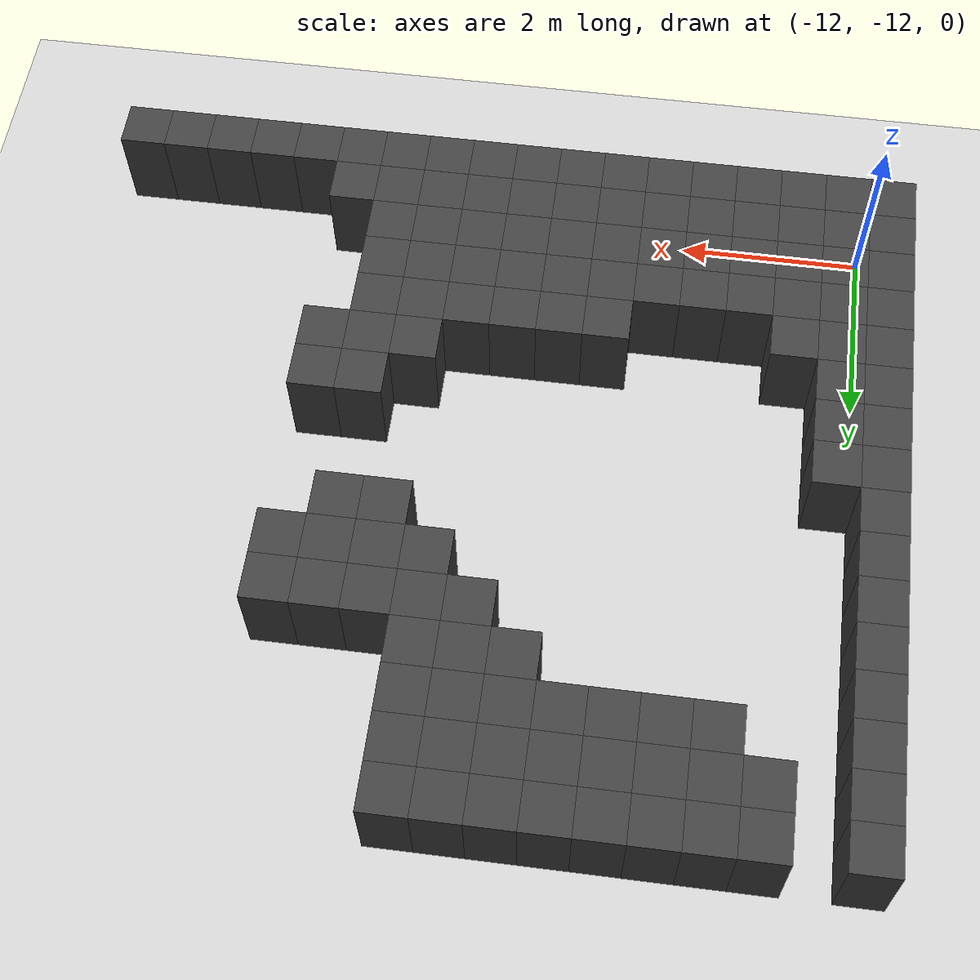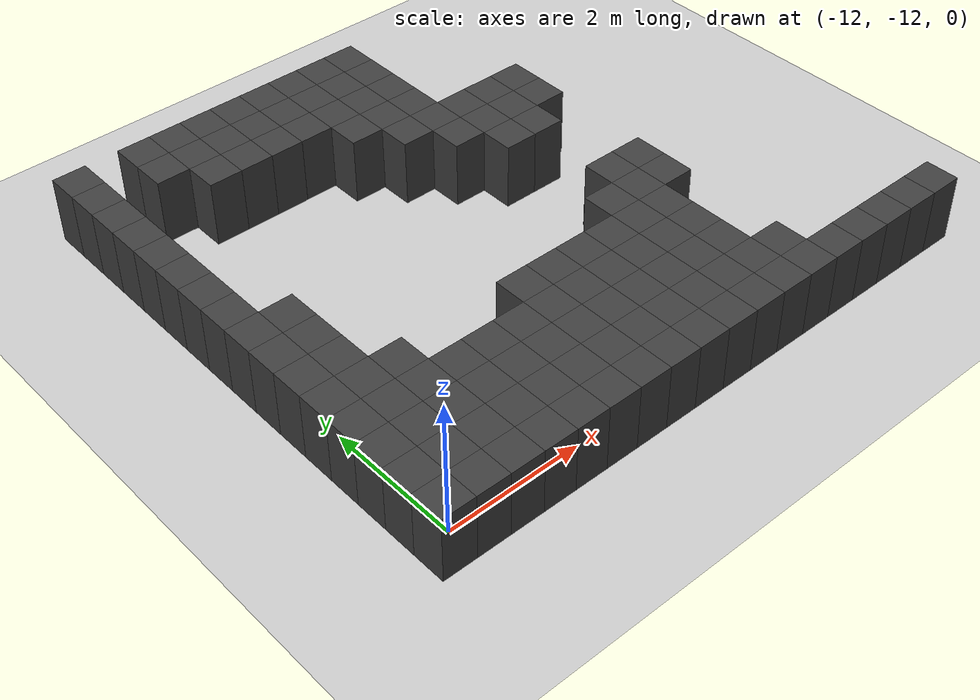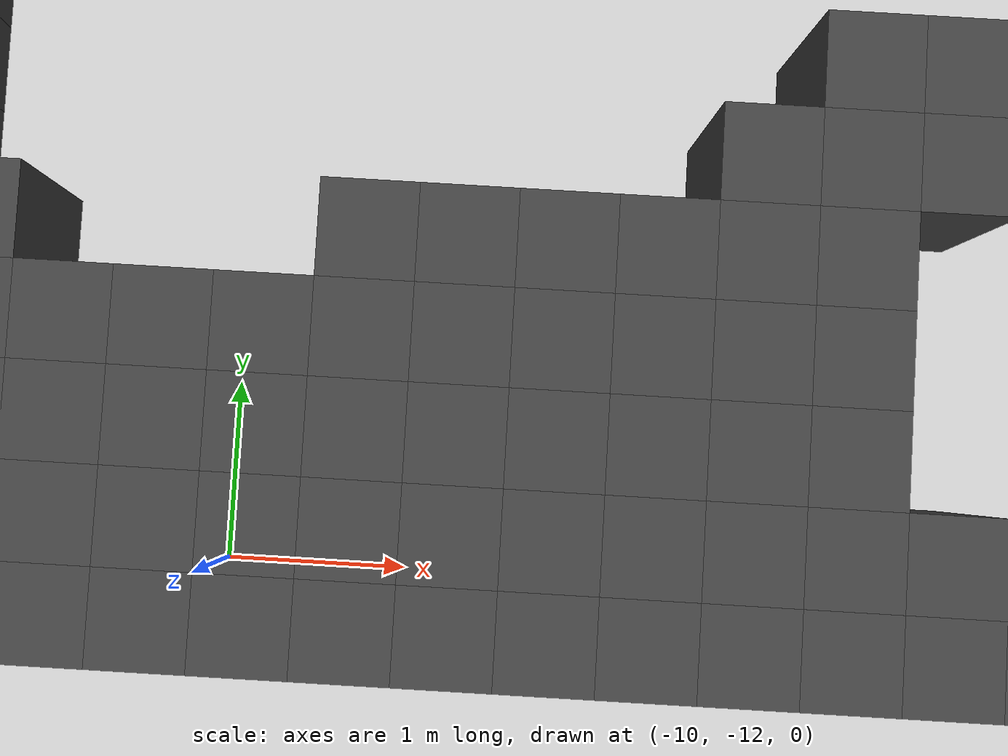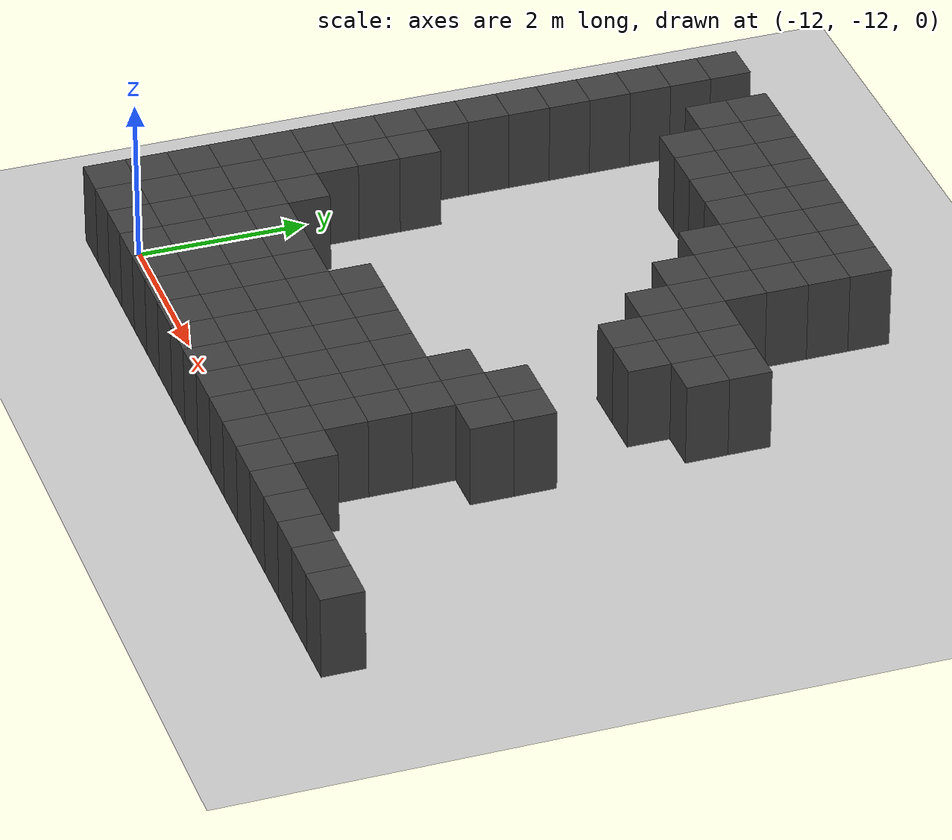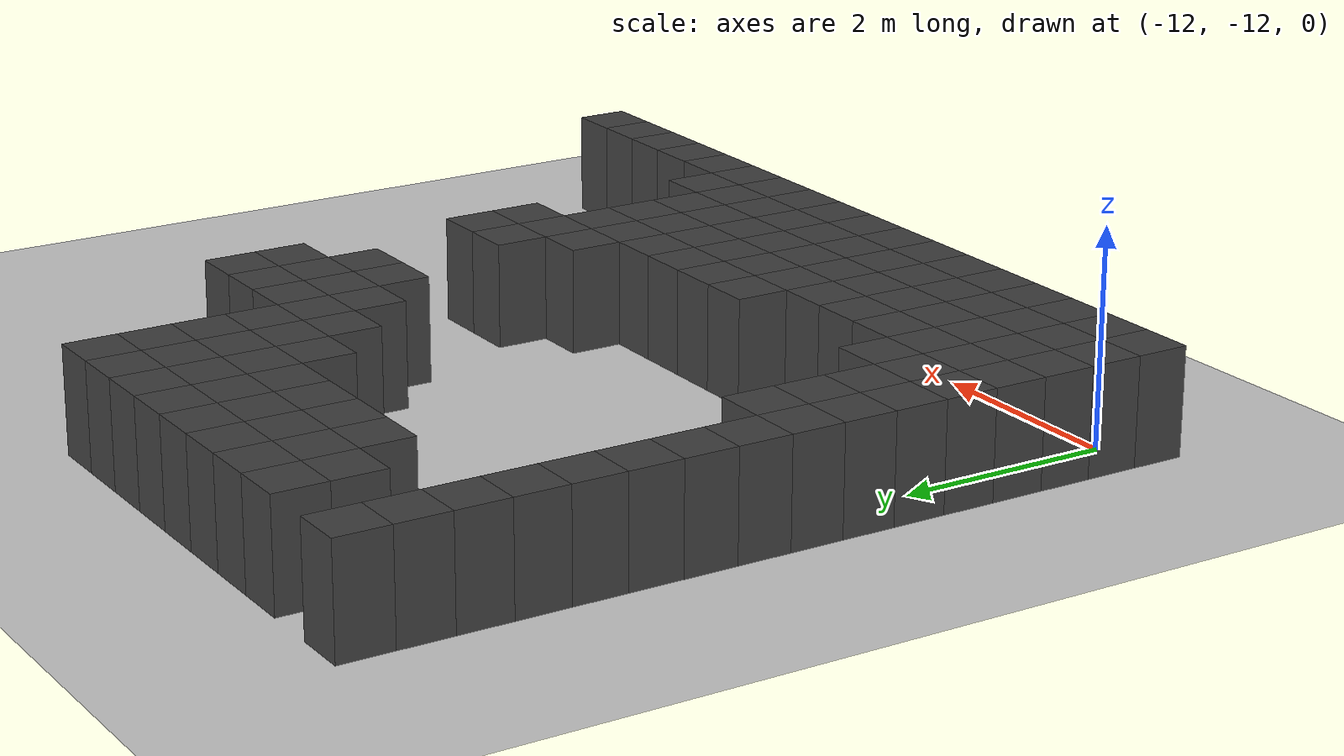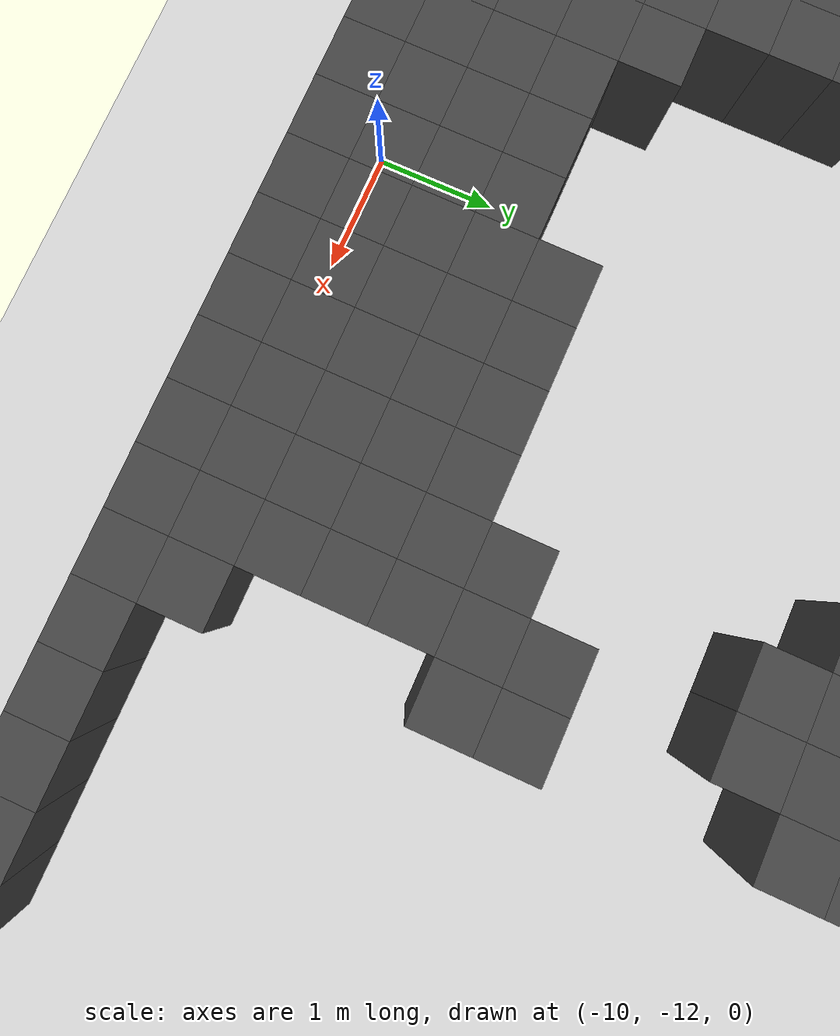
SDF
<sdf version="1.7">
 <world name="map_7372">
  <model name="ground_plane">
   <static>true</static>
   <link name="link">
    <collision name="collision">
     <geometry><plane><normal>0 0 1</normal><size>200 200</size></plane></geometry>
    </collision>
    <visual name="visual">
     <geometry><plane><normal>0 0 1</normal><size>200 200</size></plane></geometry>
     <material><ambient>0.8 0.8 0.8 1</ambient><diffuse>0.8 0.8 0.8 1</diffuse></material>
    </visual>
   </link>
  </model>
  <model name="maze_environment">
   <static>true</static>
   <link name="wall_541">
    <pose>-12.250 -4.750 0.500 0 0 0</pose>
    <collision name="col"><geometry><box><size>0.5 0.5 1.0</size></box></geometry></collision>
    <visual name="vis">
     <geometry><box><size>0.5 0.5 1.0</size></box></geometry>
     <material><ambient>0.15 0.15 0.15 1</ambient><diffuse>0.25 0.25 0.25 1</diffuse></material>
    </visual>
   </link>
   <link name="wall_542">
    <pose>-11.250 -4.750 0.500 0 0 0</pose>
    <collision name="col"><geometry><box><size>0.5 0.5 1.0</size></box></geometry></collision>
    <visual name="vis">
     <geometry><box><size>0.5 0.5 1.0</size></box></geometry>
     <material><ambient>0.15 0.15 0.15 1</ambient><diffuse>0.25 0.25 0.25 1</diffuse></material>
    </visual>
   </link>
   <link name="wall_543">
    <pose>-10.750 -4.750 0.500 0 0 0</pose>
    <collision name="col"><geometry><box><size>0.5 0.5 1.0</size></box></geometry></collision>
    <visual name="vis">
     <geometry><box><size>0.5 0.5 1.0</size></box></geometry>
     <material><ambient>0.15 0.15 0.15 1</ambient><diffuse>0.25 0.25 0.25 1</diffuse></material>
    </visual>
   </link>
   <link name="wall_544">
    <pose>-10.250 -4.750 0.500 0 0 0</pose>
    <collision name="col"><geometry><box><size>0.5 0.5 1.0</size></box></geometry></collision>
    <visual name="vis">
     <geometry><box><size>0.5 0.5 1.0</size></box></geometry>
     <material><ambient>0.15 0.15 0.15 1</ambient><diffuse>0.25 0.25 0.25 1</diffuse></material>
    </visual>
   </link>
   <link name="wall_545">
    <pose>-9.750 -4.750 0.500 0 0 0</pose>
    <collision name="col"><geometry><box><size>0.5 0.5 1.0</size></box></geometry></collision>
    <visual name="vis">
     <geometry><box><size>0.5 0.5 1.0</size></box></geometry>
     <material><ambient>0.15 0.15 0.15 1</ambient><diffuse>0.25 0.25 0.25 1</diffuse></material>
    </visual>
   </link>
   <link name="wall_546">
    <pose>-9.250 -4.750 0.500 0 0 0</pose>
    <collision name="col"><geometry><box><size>0.5 0.5 1.0</size></box></geometry></collision>
    <visual name="vis">
     <geometry><box><size>0.5 0.5 1.0</size></box></geometry>
     <material><ambient>0.15 0.15 0.15 1</ambient><diffuse>0.25 0.25 0.25 1</diffuse></material>
    </visual>
   </link>
   <link name="wall_547">
    <pose>-8.750 -4.750 0.500 0 0 0</pose>
    <collision name="col"><geometry><box><size>0.5 0.5 1.0</size></box></geometry></collision>
    <visual name="vis">
     <geometry><box><size>0.5 0.5 1.0</size></box></geometry>
     <material><ambient>0.15 0.15 0.15 1</ambient><diffuse>0.25 0.25 0.25 1</diffuse></material>
    </visual>
   </link>
   <link name="wall_548">
    <pose>-8.250 -4.750 0.500 0 0 0</pose>
    <collision name="col"><geometry><box><size>0.5 0.5 1.0</size></box></geometry></collision>
    <visual name="vis">
     <geometry><box><size>0.5 0.5 1.0</size></box></geometry>
     <material><ambient>0.15 0.15 0.15 1</ambient><diffuse>0.25 0.25 0.25 1</diffuse></material>
    </visual>
   </link>
   <link name="wall_549">
    <pose>-7.750 -4.750 0.500 0 0 0</pose>
    <collision name="col"><geometry><box><size>0.5 0.5 1.0</size></box></geometry></collision>
    <visual name="vis">
     <geometry><box><size>0.5 0.5 1.0</size></box></geometry>
     <material><ambient>0.15 0.15 0.15 1</ambient><diffuse>0.25 0.25 0.25 1</diffuse></material>
    </visual>
   </link>
   <link name="wall_558">
    <pose>-12.250 -5.250 0.500 0 0 0</pose>
    <collision name="col"><geometry><box><size>0.5 0.5 1.0</size></box></geometry></collision>
    <visual name="vis">
     <geometry><box><size>0.5 0.5 1.0</size></box></geometry>
     <material><ambient>0.15 0.15 0.15 1</ambient><diffuse>0.25 0.25 0.25 1</diffuse></material>
    </visual>
   </link>
   <link name="wall_559">
    <pose>-11.250 -5.250 0.500 0 0 0</pose>
    <collision name="col"><geometry><box><size>0.5 0.5 1.0</size></box></geometry></collision>
    <visual name="vis">
     <geometry><box><size>0.5 0.5 1.0</size></box></geometry>
     <material><ambient>0.15 0.15 0.15 1</ambient><diffuse>0.25 0.25 0.25 1</diffuse></material>
    </visual>
   </link>
   <link name="wall_560">
    <pose>-10.750 -5.250 0.500 0 0 0</pose>
    <collision name="col"><geometry><box><size>0.5 0.5 1.0</size></box></geometry></collision>
    <visual name="vis">
     <geometry><box><size>0.5 0.5 1.0</size></box></geometry>
     <material><ambient>0.15 0.15 0.15 1</ambient><diffuse>0.25 0.25 0.25 1</diffuse></material>
    </visual>
   </link>
   <link name="wall_561">
    <pose>-10.250 -5.250 0.500 0 0 0</pose>
    <collision name="col"><geometry><box><size>0.5 0.5 1.0</size></box></geometry></collision>
    <visual name="vis">
     <geometry><box><size>0.5 0.5 1.0</size></box></geometry>
     <material><ambient>0.15 0.15 0.15 1</ambient><diffuse>0.25 0.25 0.25 1</diffuse></material>
    </visual>
   </link>
   <link name="wall_562">
    <pose>-9.750 -5.250 0.500 0 0 0</pose>
    <collision name="col"><geometry><box><size>0.5 0.5 1.0</size></box></geometry></collision>
    <visual name="vis">
     <geometry><box><size>0.5 0.5 1.0</size></box></geometry>
     <material><ambient>0.15 0.15 0.15 1</ambient><diffuse>0.25 0.25 0.25 1</diffuse></material>
    </visual>
   </link>
   <link name="wall_563">
    <pose>-9.250 -5.250 0.500 0 0 0</pose>
    <collision name="col"><geometry><box><size>0.5 0.5 1.0</size></box></geometry></collision>
    <visual name="vis">
     <geometry><box><size>0.5 0.5 1.0</size></box></geometry>
     <material><ambient>0.15 0.15 0.15 1</ambient><diffuse>0.25 0.25 0.25 1</diffuse></material>
    </visual>
   </link>
   <link name="wall_564">
    <pose>-8.750 -5.250 0.500 0 0 0</pose>
    <collision name="col"><geometry><box><size>0.5 0.5 1.0</size></box></geometry></collision>
    <visual name="vis">
     <geometry><box><size>0.5 0.5 1.0</size></box></geometry>
     <material><ambient>0.15 0.15 0.15 1</ambient><diffuse>0.25 0.25 0.25 1</diffuse></material>
    </visual>
   </link>
   <link name="wall_565">
    <pose>-8.250 -5.250 0.500 0 0 0</pose>
    <collision name="col"><geometry><box><size>0.5 0.5 1.0</size></box></geometry></collision>
    <visual name="vis">
     <geometry><box><size>0.5 0.5 1.0</size></box></geometry>
     <material><ambient>0.15 0.15 0.15 1</ambient><diffuse>0.25 0.25 0.25 1</diffuse></material>
    </visual>
   </link>
   <link name="wall_566">
    <pose>-7.750 -5.250 0.500 0 0 0</pose>
    <collision name="col"><geometry><box><size>0.5 0.5 1.0</size></box></geometry></collision>
    <visual name="vis">
     <geometry><box><size>0.5 0.5 1.0</size></box></geometry>
     <material><ambient>0.15 0.15 0.15 1</ambient><diffuse>0.25 0.25 0.25 1</diffuse></material>
    </visual>
   </link>
   <link name="wall_570">
    <pose>-12.250 -5.750 0.500 0 0 0</pose>
    <collision name="col"><geometry><box><size>0.5 0.5 1.0</size></box></geometry></collision>
    <visual name="vis">
     <geometry><box><size>0.5 0.5 1.0</size></box></geometry>
     <material><ambient>0.15 0.15 0.15 1</ambient><diffuse>0.25 0.25 0.25 1</diffuse></material>
    </visual>
   </link>
   <link name="wall_571">
    <pose>-10.750 -5.750 0.500 0 0 0</pose>
    <collision name="col"><geometry><box><size>0.5 0.5 1.0</size></box></geometry></collision>
    <visual name="vis">
     <geometry><box><size>0.5 0.5 1.0</size></box></geometry>
     <material><ambient>0.15 0.15 0.15 1</ambient><diffuse>0.25 0.25 0.25 1</diffuse></material>
    </visual>
   </link>
   <link name="wall_572">
    <pose>-10.250 -5.750 0.500 0 0 0</pose>
    <collision name="col"><geometry><box><size>0.5 0.5 1.0</size></box></geometry></collision>
    <visual name="vis">
     <geometry><box><size>0.5 0.5 1.0</size></box></geometry>
     <material><ambient>0.15 0.15 0.15 1</ambient><diffuse>0.25 0.25 0.25 1</diffuse></material>
    </visual>
   </link>
   <link name="wall_573">
    <pose>-9.750 -5.750 0.500 0 0 0</pose>
    <collision name="col"><geometry><box><size>0.5 0.5 1.0</size></box></geometry></collision>
    <visual name="vis">
     <geometry><box><size>0.5 0.5 1.0</size></box></geometry>
     <material><ambient>0.15 0.15 0.15 1</ambient><diffuse>0.25 0.25 0.25 1</diffuse></material>
    </visual>
   </link>
   <link name="wall_574">
    <pose>-9.250 -5.750 0.500 0 0 0</pose>
    <collision name="col"><geometry><box><size>0.5 0.5 1.0</size></box></geometry></collision>
    <visual name="vis">
     <geometry><box><size>0.5 0.5 1.0</size></box></geometry>
     <material><ambient>0.15 0.15 0.15 1</ambient><diffuse>0.25 0.25 0.25 1</diffuse></material>
    </visual>
   </link>
   <link name="wall_575">
    <pose>-8.750 -5.750 0.500 0 0 0</pose>
    <collision name="col"><geometry><box><size>0.5 0.5 1.0</size></box></geometry></collision>
    <visual name="vis">
     <geometry><box><size>0.5 0.5 1.0</size></box></geometry>
     <material><ambient>0.15 0.15 0.15 1</ambient><diffuse>0.25 0.25 0.25 1</diffuse></material>
    </visual>
   </link>
   <link name="wall_576">
    <pose>-8.250 -5.750 0.500 0 0 0</pose>
    <collision name="col"><geometry><box><size>0.5 0.5 1.0</size></box></geometry></collision>
    <visual name="vis">
     <geometry><box><size>0.5 0.5 1.0</size></box></geometry>
     <material><ambient>0.15 0.15 0.15 1</ambient><diffuse>0.25 0.25 0.25 1</diffuse></material>
    </visual>
   </link>
   <link name="wall_577">
    <pose>-7.750 -5.750 0.500 0 0 0</pose>
    <collision name="col"><geometry><box><size>0.5 0.5 1.0</size></box></geometry></collision>
    <visual name="vis">
     <geometry><box><size>0.5 0.5 1.0</size></box></geometry>
     <material><ambient>0.15 0.15 0.15 1</ambient><diffuse>0.25 0.25 0.25 1</diffuse></material>
    </visual>
   </link>
   <link name="wall_579">
    <pose>-12.250 -6.250 0.500 0 0 0</pose>
    <collision name="col"><geometry><box><size>0.5 0.5 1.0</size></box></geometry></collision>
    <visual name="vis">
     <geometry><box><size>0.5 0.5 1.0</size></box></geometry>
     <material><ambient>0.15 0.15 0.15 1</ambient><diffuse>0.25 0.25 0.25 1</diffuse></material>
    </visual>
   </link>
   <link name="wall_580">
    <pose>-8.750 -6.250 0.500 0 0 0</pose>
    <collision name="col"><geometry><box><size>0.5 0.5 1.0</size></box></geometry></collision>
    <visual name="vis">
     <geometry><box><size>0.5 0.5 1.0</size></box></geometry>
     <material><ambient>0.15 0.15 0.15 1</ambient><diffuse>0.25 0.25 0.25 1</diffuse></material>
    </visual>
   </link>
   <link name="wall_581">
    <pose>-8.250 -6.250 0.500 0 0 0</pose>
    <collision name="col"><geometry><box><size>0.5 0.5 1.0</size></box></geometry></collision>
    <visual name="vis">
     <geometry><box><size>0.5 0.5 1.0</size></box></geometry>
     <material><ambient>0.15 0.15 0.15 1</ambient><diffuse>0.25 0.25 0.25 1</diffuse></material>
    </visual>
   </link>
   <link name="wall_582">
    <pose>-7.750 -6.250 0.500 0 0 0</pose>
    <collision name="col"><geometry><box><size>0.5 0.5 1.0</size></box></geometry></collision>
    <visual name="vis">
     <geometry><box><size>0.5 0.5 1.0</size></box></geometry>
     <material><ambient>0.15 0.15 0.15 1</ambient><diffuse>0.25 0.25 0.25 1</diffuse></material>
    </visual>
   </link>
   <link name="wall_587">
    <pose>-12.250 -6.750 0.500 0 0 0</pose>
    <collision name="col"><geometry><box><size>0.5 0.5 1.0</size></box></geometry></collision>
    <visual name="vis">
     <geometry><box><size>0.5 0.5 1.0</size></box></geometry>
     <material><ambient>0.15 0.15 0.15 1</ambient><diffuse>0.25 0.25 0.25 1</diffuse></material>
    </visual>
   </link>
   <link name="wall_588">
    <pose>-8.250 -6.750 0.500 0 0 0</pose>
    <collision name="col"><geometry><box><size>0.5 0.5 1.0</size></box></geometry></collision>
    <visual name="vis">
     <geometry><box><size>0.5 0.5 1.0</size></box></geometry>
     <material><ambient>0.15 0.15 0.15 1</ambient><diffuse>0.25 0.25 0.25 1</diffuse></material>
    </visual>
   </link>
   <link name="wall_589">
    <pose>-7.750 -6.750 0.500 0 0 0</pose>
    <collision name="col"><geometry><box><size>0.5 0.5 1.0</size></box></geometry></collision>
    <visual name="vis">
     <geometry><box><size>0.5 0.5 1.0</size></box></geometry>
     <material><ambient>0.15 0.15 0.15 1</ambient><diffuse>0.25 0.25 0.25 1</diffuse></material>
    </visual>
   </link>
   <link name="wall_590">
    <pose>-7.250 -6.750 0.500 0 0 0</pose>
    <collision name="col"><geometry><box><size>0.5 0.5 1.0</size></box></geometry></collision>
    <visual name="vis">
     <geometry><box><size>0.5 0.5 1.0</size></box></geometry>
     <material><ambient>0.15 0.15 0.15 1</ambient><diffuse>0.25 0.25 0.25 1</diffuse></material>
    </visual>
   </link>
   <link name="wall_591">
    <pose>-6.750 -6.750 0.500 0 0 0</pose>
    <collision name="col"><geometry><box><size>0.5 0.5 1.0</size></box></geometry></collision>
    <visual name="vis">
     <geometry><box><size>0.5 0.5 1.0</size></box></geometry>
     <material><ambient>0.15 0.15 0.15 1</ambient><diffuse>0.25 0.25 0.25 1</diffuse></material>
    </visual>
   </link>
   <link name="wall_592">
    <pose>-6.250 -6.750 0.500 0 0 0</pose>
    <collision name="col"><geometry><box><size>0.5 0.5 1.0</size></box></geometry></collision>
    <visual name="vis">
     <geometry><box><size>0.5 0.5 1.0</size></box></geometry>
     <material><ambient>0.15 0.15 0.15 1</ambient><diffuse>0.25 0.25 0.25 1</diffuse></material>
    </visual>
   </link>
   <link name="wall_603">
    <pose>-12.250 -7.250 0.500 0 0 0</pose>
    <collision name="col"><geometry><box><size>0.5 0.5 1.0</size></box></geometry></collision>
    <visual name="vis">
     <geometry><box><size>0.5 0.5 1.0</size></box></geometry>
     <material><ambient>0.15 0.15 0.15 1</ambient><diffuse>0.25 0.25 0.25 1</diffuse></material>
    </visual>
   </link>
   <link name="wall_604">
    <pose>-7.750 -7.250 0.500 0 0 0</pose>
    <collision name="col"><geometry><box><size>0.5 0.5 1.0</size></box></geometry></collision>
    <visual name="vis">
     <geometry><box><size>0.5 0.5 1.0</size></box></geometry>
     <material><ambient>0.15 0.15 0.15 1</ambient><diffuse>0.25 0.25 0.25 1</diffuse></material>
    </visual>
   </link>
   <link name="wall_605">
    <pose>-7.250 -7.250 0.500 0 0 0</pose>
    <collision name="col"><geometry><box><size>0.5 0.5 1.0</size></box></geometry></collision>
    <visual name="vis">
     <geometry><box><size>0.5 0.5 1.0</size></box></geometry>
     <material><ambient>0.15 0.15 0.15 1</ambient><diffuse>0.25 0.25 0.25 1</diffuse></material>
    </visual>
   </link>
   <link name="wall_606">
    <pose>-6.750 -7.250 0.500 0 0 0</pose>
    <collision name="col"><geometry><box><size>0.5 0.5 1.0</size></box></geometry></collision>
    <visual name="vis">
     <geometry><box><size>0.5 0.5 1.0</size></box></geometry>
     <material><ambient>0.15 0.15 0.15 1</ambient><diffuse>0.25 0.25 0.25 1</diffuse></material>
    </visual>
   </link>
   <link name="wall_607">
    <pose>-6.250 -7.250 0.500 0 0 0</pose>
    <collision name="col"><geometry><box><size>0.5 0.5 1.0</size></box></geometry></collision>
    <visual name="vis">
     <geometry><box><size>0.5 0.5 1.0</size></box></geometry>
     <material><ambient>0.15 0.15 0.15 1</ambient><diffuse>0.25 0.25 0.25 1</diffuse></material>
    </visual>
   </link>
   <link name="wall_621">
    <pose>-12.250 -7.750 0.500 0 0 0</pose>
    <collision name="col"><geometry><box><size>0.5 0.5 1.0</size></box></geometry></collision>
    <visual name="vis">
     <geometry><box><size>0.5 0.5 1.0</size></box></geometry>
     <material><ambient>0.15 0.15 0.15 1</ambient><diffuse>0.25 0.25 0.25 1</diffuse></material>
    </visual>
   </link>
   <link name="wall_622">
    <pose>-7.250 -7.750 0.500 0 0 0</pose>
    <collision name="col"><geometry><box><size>0.5 0.5 1.0</size></box></geometry></collision>
    <visual name="vis">
     <geometry><box><size>0.5 0.5 1.0</size></box></geometry>
     <material><ambient>0.15 0.15 0.15 1</ambient><diffuse>0.25 0.25 0.25 1</diffuse></material>
    </visual>
   </link>
   <link name="wall_623">
    <pose>-6.750 -7.750 0.500 0 0 0</pose>
    <collision name="col"><geometry><box><size>0.5 0.5 1.0</size></box></geometry></collision>
    <visual name="vis">
     <geometry><box><size>0.5 0.5 1.0</size></box></geometry>
     <material><ambient>0.15 0.15 0.15 1</ambient><diffuse>0.25 0.25 0.25 1</diffuse></material>
    </visual>
   </link>
   <link name="wall_641">
    <pose>-12.250 -8.250 0.500 0 0 0</pose>
    <collision name="col"><geometry><box><size>0.5 0.5 1.0</size></box></geometry></collision>
    <visual name="vis">
     <geometry><box><size>0.5 0.5 1.0</size></box></geometry>
     <material><ambient>0.15 0.15 0.15 1</ambient><diffuse>0.25 0.25 0.25 1</diffuse></material>
    </visual>
   </link>
   <link name="wall_657">
    <pose>-12.250 -8.750 0.500 0 0 0</pose>
    <collision name="col"><geometry><box><size>0.5 0.5 1.0</size></box></geometry></collision>
    <visual name="vis">
     <geometry><box><size>0.5 0.5 1.0</size></box></geometry>
     <material><ambient>0.15 0.15 0.15 1</ambient><diffuse>0.25 0.25 0.25 1</diffuse></material>
    </visual>
   </link>
   <link name="wall_658">
    <pose>-11.750 -8.750 0.500 0 0 0</pose>
    <collision name="col"><geometry><box><size>0.5 0.5 1.0</size></box></geometry></collision>
    <visual name="vis">
     <geometry><box><size>0.5 0.5 1.0</size></box></geometry>
     <material><ambient>0.15 0.15 0.15 1</ambient><diffuse>0.25 0.25 0.25 1</diffuse></material>
    </visual>
   </link>
   <link name="wall_673">
    <pose>-12.250 -9.250 0.500 0 0 0</pose>
    <collision name="col"><geometry><box><size>0.5 0.5 1.0</size></box></geometry></collision>
    <visual name="vis">
     <geometry><box><size>0.5 0.5 1.0</size></box></geometry>
     <material><ambient>0.15 0.15 0.15 1</ambient><diffuse>0.25 0.25 0.25 1</diffuse></material>
    </visual>
   </link>
   <link name="wall_674">
    <pose>-11.750 -9.250 0.500 0 0 0</pose>
    <collision name="col"><geometry><box><size>0.5 0.5 1.0</size></box></geometry></collision>
    <visual name="vis">
     <geometry><box><size>0.5 0.5 1.0</size></box></geometry>
     <material><ambient>0.15 0.15 0.15 1</ambient><diffuse>0.25 0.25 0.25 1</diffuse></material>
    </visual>
   </link>
   <link name="wall_675">
    <pose>-6.750 -9.250 0.500 0 0 0</pose>
    <collision name="col"><geometry><box><size>0.5 0.5 1.0</size></box></geometry></collision>
    <visual name="vis">
     <geometry><box><size>0.5 0.5 1.0</size></box></geometry>
     <material><ambient>0.15 0.15 0.15 1</ambient><diffuse>0.25 0.25 0.25 1</diffuse></material>
    </visual>
   </link>
   <link name="wall_676">
    <pose>-6.250 -9.250 0.500 0 0 0</pose>
    <collision name="col"><geometry><box><size>0.5 0.5 1.0</size></box></geometry></collision>
    <visual name="vis">
     <geometry><box><size>0.5 0.5 1.0</size></box></geometry>
     <material><ambient>0.15 0.15 0.15 1</ambient><diffuse>0.25 0.25 0.25 1</diffuse></material>
    </visual>
   </link>
   <link name="wall_692">
    <pose>-12.250 -9.750 0.500 0 0 0</pose>
    <collision name="col"><geometry><box><size>0.5 0.5 1.0</size></box></geometry></collision>
    <visual name="vis">
     <geometry><box><size>0.5 0.5 1.0</size></box></geometry>
     <material><ambient>0.15 0.15 0.15 1</ambient><diffuse>0.25 0.25 0.25 1</diffuse></material>
    </visual>
   </link>
   <link name="wall_693">
    <pose>-11.750 -9.750 0.500 0 0 0</pose>
    <collision name="col"><geometry><box><size>0.5 0.5 1.0</size></box></geometry></collision>
    <visual name="vis">
     <geometry><box><size>0.5 0.5 1.0</size></box></geometry>
     <material><ambient>0.15 0.15 0.15 1</ambient><diffuse>0.25 0.25 0.25 1</diffuse></material>
    </visual>
   </link>
   <link name="wall_694">
    <pose>-7.250 -9.750 0.500 0 0 0</pose>
    <collision name="col"><geometry><box><size>0.5 0.5 1.0</size></box></geometry></collision>
    <visual name="vis">
     <geometry><box><size>0.5 0.5 1.0</size></box></geometry>
     <material><ambient>0.15 0.15 0.15 1</ambient><diffuse>0.25 0.25 0.25 1</diffuse></material>
    </visual>
   </link>
   <link name="wall_695">
    <pose>-6.750 -9.750 0.500 0 0 0</pose>
    <collision name="col"><geometry><box><size>0.5 0.5 1.0</size></box></geometry></collision>
    <visual name="vis">
     <geometry><box><size>0.5 0.5 1.0</size></box></geometry>
     <material><ambient>0.15 0.15 0.15 1</ambient><diffuse>0.25 0.25 0.25 1</diffuse></material>
    </visual>
   </link>
   <link name="wall_696">
    <pose>-6.250 -9.750 0.500 0 0 0</pose>
    <collision name="col"><geometry><box><size>0.5 0.5 1.0</size></box></geometry></collision>
    <visual name="vis">
     <geometry><box><size>0.5 0.5 1.0</size></box></geometry>
     <material><ambient>0.15 0.15 0.15 1</ambient><diffuse>0.25 0.25 0.25 1</diffuse></material>
    </visual>
   </link>
   <link name="wall_708">
    <pose>-12.250 -10.250 0.500 0 0 0</pose>
    <collision name="col"><geometry><box><size>0.5 0.5 1.0</size></box></geometry></collision>
    <visual name="vis">
     <geometry><box><size>0.5 0.5 1.0</size></box></geometry>
     <material><ambient>0.15 0.15 0.15 1</ambient><diffuse>0.25 0.25 0.25 1</diffuse></material>
    </visual>
   </link>
   <link name="wall_709">
    <pose>-11.750 -10.250 0.500 0 0 0</pose>
    <collision name="col"><geometry><box><size>0.5 0.5 1.0</size></box></geometry></collision>
    <visual name="vis">
     <geometry><box><size>0.5 0.5 1.0</size></box></geometry>
     <material><ambient>0.15 0.15 0.15 1</ambient><diffuse>0.25 0.25 0.25 1</diffuse></material>
    </visual>
   </link>
   <link name="wall_710">
    <pose>-11.250 -10.250 0.500 0 0 0</pose>
    <collision name="col"><geometry><box><size>0.5 0.5 1.0</size></box></geometry></collision>
    <visual name="vis">
     <geometry><box><size>0.5 0.5 1.0</size></box></geometry>
     <material><ambient>0.15 0.15 0.15 1</ambient><diffuse>0.25 0.25 0.25 1</diffuse></material>
    </visual>
   </link>
   <link name="wall_711">
    <pose>-9.250 -10.250 0.500 0 0 0</pose>
    <collision name="col"><geometry><box><size>0.5 0.5 1.0</size></box></geometry></collision>
    <visual name="vis">
     <geometry><box><size>0.5 0.5 1.0</size></box></geometry>
     <material><ambient>0.15 0.15 0.15 1</ambient><diffuse>0.25 0.25 0.25 1</diffuse></material>
    </visual>
   </link>
   <link name="wall_712">
    <pose>-8.750 -10.250 0.500 0 0 0</pose>
    <collision name="col"><geometry><box><size>0.5 0.5 1.0</size></box></geometry></collision>
    <visual name="vis">
     <geometry><box><size>0.5 0.5 1.0</size></box></geometry>
     <material><ambient>0.15 0.15 0.15 1</ambient><diffuse>0.25 0.25 0.25 1</diffuse></material>
    </visual>
   </link>
   <link name="wall_713">
    <pose>-8.250 -10.250 0.500 0 0 0</pose>
    <collision name="col"><geometry><box><size>0.5 0.5 1.0</size></box></geometry></collision>
    <visual name="vis">
     <geometry><box><size>0.5 0.5 1.0</size></box></geometry>
     <material><ambient>0.15 0.15 0.15 1</ambient><diffuse>0.25 0.25 0.25 1</diffuse></material>
    </visual>
   </link>
   <link name="wall_714">
    <pose>-7.750 -10.250 0.500 0 0 0</pose>
    <collision name="col"><geometry><box><size>0.5 0.5 1.0</size></box></geometry></collision>
    <visual name="vis">
     <geometry><box><size>0.5 0.5 1.0</size></box></geometry>
     <material><ambient>0.15 0.15 0.15 1</ambient><diffuse>0.25 0.25 0.25 1</diffuse></material>
    </visual>
   </link>
   <link name="wall_715">
    <pose>-7.250 -10.250 0.500 0 0 0</pose>
    <collision name="col"><geometry><box><size>0.5 0.5 1.0</size></box></geometry></collision>
    <visual name="vis">
     <geometry><box><size>0.5 0.5 1.0</size></box></geometry>
     <material><ambient>0.15 0.15 0.15 1</ambient><diffuse>0.25 0.25 0.25 1</diffuse></material>
    </visual>
   </link>
   <link name="wall_716">
    <pose>-6.750 -10.250 0.500 0 0 0</pose>
    <collision name="col"><geometry><box><size>0.5 0.5 1.0</size></box></geometry></collision>
    <visual name="vis">
     <geometry><box><size>0.5 0.5 1.0</size></box></geometry>
     <material><ambient>0.15 0.15 0.15 1</ambient><diffuse>0.25 0.25 0.25 1</diffuse></material>
    </visual>
   </link>
   <link name="wall_726">
    <pose>-12.250 -10.750 0.500 0 0 0</pose>
    <collision name="col"><geometry><box><size>0.5 0.5 1.0</size></box></geometry></collision>
    <visual name="vis">
     <geometry><box><size>0.5 0.5 1.0</size></box></geometry>
     <material><ambient>0.15 0.15 0.15 1</ambient><diffuse>0.25 0.25 0.25 1</diffuse></material>
    </visual>
   </link>
   <link name="wall_727">
    <pose>-11.750 -10.750 0.500 0 0 0</pose>
    <collision name="col"><geometry><box><size>0.5 0.5 1.0</size></box></geometry></collision>
    <visual name="vis">
     <geometry><box><size>0.5 0.5 1.0</size></box></geometry>
     <material><ambient>0.15 0.15 0.15 1</ambient><diffuse>0.25 0.25 0.25 1</diffuse></material>
    </visual>
   </link>
   <link name="wall_728">
    <pose>-11.250 -10.750 0.500 0 0 0</pose>
    <collision name="col"><geometry><box><size>0.5 0.5 1.0</size></box></geometry></collision>
    <visual name="vis">
     <geometry><box><size>0.5 0.5 1.0</size></box></geometry>
     <material><ambient>0.15 0.15 0.15 1</ambient><diffuse>0.25 0.25 0.25 1</diffuse></material>
    </visual>
   </link>
   <link name="wall_729">
    <pose>-10.750 -10.750 0.500 0 0 0</pose>
    <collision name="col"><geometry><box><size>0.5 0.5 1.0</size></box></geometry></collision>
    <visual name="vis">
     <geometry><box><size>0.5 0.5 1.0</size></box></geometry>
     <material><ambient>0.15 0.15 0.15 1</ambient><diffuse>0.25 0.25 0.25 1</diffuse></material>
    </visual>
   </link>
   <link name="wall_730">
    <pose>-10.250 -10.750 0.500 0 0 0</pose>
    <collision name="col"><geometry><box><size>0.5 0.5 1.0</size></box></geometry></collision>
    <visual name="vis">
     <geometry><box><size>0.5 0.5 1.0</size></box></geometry>
     <material><ambient>0.15 0.15 0.15 1</ambient><diffuse>0.25 0.25 0.25 1</diffuse></material>
    </visual>
   </link>
   <link name="wall_731">
    <pose>-9.750 -10.750 0.500 0 0 0</pose>
    <collision name="col"><geometry><box><size>0.5 0.5 1.0</size></box></geometry></collision>
    <visual name="vis">
     <geometry><box><size>0.5 0.5 1.0</size></box></geometry>
     <material><ambient>0.15 0.15 0.15 1</ambient><diffuse>0.25 0.25 0.25 1</diffuse></material>
    </visual>
   </link>
   <link name="wall_732">
    <pose>-9.250 -10.750 0.500 0 0 0</pose>
    <collision name="col"><geometry><box><size>0.5 0.5 1.0</size></box></geometry></collision>
    <visual name="vis">
     <geometry><box><size>0.5 0.5 1.0</size></box></geometry>
     <material><ambient>0.15 0.15 0.15 1</ambient><diffuse>0.25 0.25 0.25 1</diffuse></material>
    </visual>
   </link>
   <link name="wall_733">
    <pose>-8.750 -10.750 0.500 0 0 0</pose>
    <collision name="col"><geometry><box><size>0.5 0.5 1.0</size></box></geometry></collision>
    <visual name="vis">
     <geometry><box><size>0.5 0.5 1.0</size></box></geometry>
     <material><ambient>0.15 0.15 0.15 1</ambient><diffuse>0.25 0.25 0.25 1</diffuse></material>
    </visual>
   </link>
   <link name="wall_734">
    <pose>-8.250 -10.750 0.500 0 0 0</pose>
    <collision name="col"><geometry><box><size>0.5 0.5 1.0</size></box></geometry></collision>
    <visual name="vis">
     <geometry><box><size>0.5 0.5 1.0</size></box></geometry>
     <material><ambient>0.15 0.15 0.15 1</ambient><diffuse>0.25 0.25 0.25 1</diffuse></material>
    </visual>
   </link>
   <link name="wall_735">
    <pose>-7.750 -10.750 0.500 0 0 0</pose>
    <collision name="col"><geometry><box><size>0.5 0.5 1.0</size></box></geometry></collision>
    <visual name="vis">
     <geometry><box><size>0.5 0.5 1.0</size></box></geometry>
     <material><ambient>0.15 0.15 0.15 1</ambient><diffuse>0.25 0.25 0.25 1</diffuse></material>
    </visual>
   </link>
   <link name="wall_736">
    <pose>-7.250 -10.750 0.500 0 0 0</pose>
    <collision name="col"><geometry><box><size>0.5 0.5 1.0</size></box></geometry></collision>
    <visual name="vis">
     <geometry><box><size>0.5 0.5 1.0</size></box></geometry>
     <material><ambient>0.15 0.15 0.15 1</ambient><diffuse>0.25 0.25 0.25 1</diffuse></material>
    </visual>
   </link>
   <link name="wall_737">
    <pose>-6.750 -10.750 0.500 0 0 0</pose>
    <collision name="col"><geometry><box><size>0.5 0.5 1.0</size></box></geometry></collision>
    <visual name="vis">
     <geometry><box><size>0.5 0.5 1.0</size></box></geometry>
     <material><ambient>0.15 0.15 0.15 1</ambient><diffuse>0.25 0.25 0.25 1</diffuse></material>
    </visual>
   </link>
   <link name="wall_745">
    <pose>-12.250 -11.250 0.500 0 0 0</pose>
    <collision name="col"><geometry><box><size>0.5 0.5 1.0</size></box></geometry></collision>
    <visual name="vis">
     <geometry><box><size>0.5 0.5 1.0</size></box></geometry>
     <material><ambient>0.15 0.15 0.15 1</ambient><diffuse>0.25 0.25 0.25 1</diffuse></material>
    </visual>
   </link>
   <link name="wall_746">
    <pose>-11.750 -11.250 0.500 0 0 0</pose>
    <collision name="col"><geometry><box><size>0.5 0.5 1.0</size></box></geometry></collision>
    <visual name="vis">
     <geometry><box><size>0.5 0.5 1.0</size></box></geometry>
     <material><ambient>0.15 0.15 0.15 1</ambient><diffuse>0.25 0.25 0.25 1</diffuse></material>
    </visual>
   </link>
   <link name="wall_747">
    <pose>-11.250 -11.250 0.500 0 0 0</pose>
    <collision name="col"><geometry><box><size>0.5 0.5 1.0</size></box></geometry></collision>
    <visual name="vis">
     <geometry><box><size>0.5 0.5 1.0</size></box></geometry>
     <material><ambient>0.15 0.15 0.15 1</ambient><diffuse>0.25 0.25 0.25 1</diffuse></material>
    </visual>
   </link>
   <link name="wall_748">
    <pose>-10.750 -11.250 0.500 0 0 0</pose>
    <collision name="col"><geometry><box><size>0.5 0.5 1.0</size></box></geometry></collision>
    <visual name="vis">
     <geometry><box><size>0.5 0.5 1.0</size></box></geometry>
     <material><ambient>0.15 0.15 0.15 1</ambient><diffuse>0.25 0.25 0.25 1</diffuse></material>
    </visual>
   </link>
   <link name="wall_749">
    <pose>-10.250 -11.250 0.500 0 0 0</pose>
    <collision name="col"><geometry><box><size>0.5 0.5 1.0</size></box></geometry></collision>
    <visual name="vis">
     <geometry><box><size>0.5 0.5 1.0</size></box></geometry>
     <material><ambient>0.15 0.15 0.15 1</ambient><diffuse>0.25 0.25 0.25 1</diffuse></material>
    </visual>
   </link>
   <link name="wall_750">
    <pose>-9.750 -11.250 0.500 0 0 0</pose>
    <collision name="col"><geometry><box><size>0.5 0.5 1.0</size></box></geometry></collision>
    <visual name="vis">
     <geometry><box><size>0.5 0.5 1.0</size></box></geometry>
     <material><ambient>0.15 0.15 0.15 1</ambient><diffuse>0.25 0.25 0.25 1</diffuse></material>
    </visual>
   </link>
   <link name="wall_751">
    <pose>-9.250 -11.250 0.500 0 0 0</pose>
    <collision name="col"><geometry><box><size>0.5 0.5 1.0</size></box></geometry></collision>
    <visual name="vis">
     <geometry><box><size>0.5 0.5 1.0</size></box></geometry>
     <material><ambient>0.15 0.15 0.15 1</ambient><diffuse>0.25 0.25 0.25 1</diffuse></material>
    </visual>
   </link>
   <link name="wall_752">
    <pose>-8.750 -11.250 0.500 0 0 0</pose>
    <collision name="col"><geometry><box><size>0.5 0.5 1.0</size></box></geometry></collision>
    <visual name="vis">
     <geometry><box><size>0.5 0.5 1.0</size></box></geometry>
     <material><ambient>0.15 0.15 0.15 1</ambient><diffuse>0.25 0.25 0.25 1</diffuse></material>
    </visual>
   </link>
   <link name="wall_753">
    <pose>-8.250 -11.250 0.500 0 0 0</pose>
    <collision name="col"><geometry><box><size>0.5 0.5 1.0</size></box></geometry></collision>
    <visual name="vis">
     <geometry><box><size>0.5 0.5 1.0</size></box></geometry>
     <material><ambient>0.15 0.15 0.15 1</ambient><diffuse>0.25 0.25 0.25 1</diffuse></material>
    </visual>
   </link>
   <link name="wall_754">
    <pose>-7.750 -11.250 0.500 0 0 0</pose>
    <collision name="col"><geometry><box><size>0.5 0.5 1.0</size></box></geometry></collision>
    <visual name="vis">
     <geometry><box><size>0.5 0.5 1.0</size></box></geometry>
     <material><ambient>0.15 0.15 0.15 1</ambient><diffuse>0.25 0.25 0.25 1</diffuse></material>
    </visual>
   </link>
   <link name="wall_755">
    <pose>-7.250 -11.250 0.500 0 0 0</pose>
    <collision name="col"><geometry><box><size>0.5 0.5 1.0</size></box></geometry></collision>
    <visual name="vis">
     <geometry><box><size>0.5 0.5 1.0</size></box></geometry>
     <material><ambient>0.15 0.15 0.15 1</ambient><diffuse>0.25 0.25 0.25 1</diffuse></material>
    </visual>
   </link>
   <link name="wall_756">
    <pose>-6.750 -11.250 0.500 0 0 0</pose>
    <collision name="col"><geometry><box><size>0.5 0.5 1.0</size></box></geometry></collision>
    <visual name="vis">
     <geometry><box><size>0.5 0.5 1.0</size></box></geometry>
     <material><ambient>0.15 0.15 0.15 1</ambient><diffuse>0.25 0.25 0.25 1</diffuse></material>
    </visual>
   </link>
   <link name="wall_765">
    <pose>-12.250 -11.750 0.500 0 0 0</pose>
    <collision name="col"><geometry><box><size>0.5 0.5 1.0</size></box></geometry></collision>
    <visual name="vis">
     <geometry><box><size>0.5 0.5 1.0</size></box></geometry>
     <material><ambient>0.15 0.15 0.15 1</ambient><diffuse>0.25 0.25 0.25 1</diffuse></material>
    </visual>
   </link>
   <link name="wall_766">
    <pose>-11.750 -11.750 0.500 0 0 0</pose>
    <collision name="col"><geometry><box><size>0.5 0.5 1.0</size></box></geometry></collision>
    <visual name="vis">
     <geometry><box><size>0.5 0.5 1.0</size></box></geometry>
     <material><ambient>0.15 0.15 0.15 1</ambient><diffuse>0.25 0.25 0.25 1</diffuse></material>
    </visual>
   </link>
   <link name="wall_767">
    <pose>-11.250 -11.750 0.500 0 0 0</pose>
    <collision name="col"><geometry><box><size>0.5 0.5 1.0</size></box></geometry></collision>
    <visual name="vis">
     <geometry><box><size>0.5 0.5 1.0</size></box></geometry>
     <material><ambient>0.15 0.15 0.15 1</ambient><diffuse>0.25 0.25 0.25 1</diffuse></material>
    </visual>
   </link>
   <link name="wall_768">
    <pose>-10.750 -11.750 0.500 0 0 0</pose>
    <collision name="col"><geometry><box><size>0.5 0.5 1.0</size></box></geometry></collision>
    <visual name="vis">
     <geometry><box><size>0.5 0.5 1.0</size></box></geometry>
     <material><ambient>0.15 0.15 0.15 1</ambient><diffuse>0.25 0.25 0.25 1</diffuse></material>
    </visual>
   </link>
   <link name="wall_769">
    <pose>-10.250 -11.750 0.500 0 0 0</pose>
    <collision name="col"><geometry><box><size>0.5 0.5 1.0</size></box></geometry></collision>
    <visual name="vis">
     <geometry><box><size>0.5 0.5 1.0</size></box></geometry>
     <material><ambient>0.15 0.15 0.15 1</ambient><diffuse>0.25 0.25 0.25 1</diffuse></material>
    </visual>
   </link>
   <link name="wall_770">
    <pose>-9.750 -11.750 0.500 0 0 0</pose>
    <collision name="col"><geometry><box><size>0.5 0.5 1.0</size></box></geometry></collision>
    <visual name="vis">
     <geometry><box><size>0.5 0.5 1.0</size></box></geometry>
     <material><ambient>0.15 0.15 0.15 1</ambient><diffuse>0.25 0.25 0.25 1</diffuse></material>
    </visual>
   </link>
   <link name="wall_771">
    <pose>-9.250 -11.750 0.500 0 0 0</pose>
    <collision name="col"><geometry><box><size>0.5 0.5 1.0</size></box></geometry></collision>
    <visual name="vis">
     <geometry><box><size>0.5 0.5 1.0</size></box></geometry>
     <material><ambient>0.15 0.15 0.15 1</ambient><diffuse>0.25 0.25 0.25 1</diffuse></material>
    </visual>
   </link>
   <link name="wall_772">
    <pose>-8.750 -11.750 0.500 0 0 0</pose>
    <collision name="col"><geometry><box><size>0.5 0.5 1.0</size></box></geometry></collision>
    <visual name="vis">
     <geometry><box><size>0.5 0.5 1.0</size></box></geometry>
     <material><ambient>0.15 0.15 0.15 1</ambient><diffuse>0.25 0.25 0.25 1</diffuse></material>
    </visual>
   </link>
   <link name="wall_773">
    <pose>-8.250 -11.750 0.500 0 0 0</pose>
    <collision name="col"><geometry><box><size>0.5 0.5 1.0</size></box></geometry></collision>
    <visual name="vis">
     <geometry><box><size>0.5 0.5 1.0</size></box></geometry>
     <material><ambient>0.15 0.15 0.15 1</ambient><diffuse>0.25 0.25 0.25 1</diffuse></material>
    </visual>
   </link>
   <link name="wall_774">
    <pose>-7.750 -11.750 0.500 0 0 0</pose>
    <collision name="col"><geometry><box><size>0.5 0.5 1.0</size></box></geometry></collision>
    <visual name="vis">
     <geometry><box><size>0.5 0.5 1.0</size></box></geometry>
     <material><ambient>0.15 0.15 0.15 1</ambient><diffuse>0.25 0.25 0.25 1</diffuse></material>
    </visual>
   </link>
   <link name="wall_775">
    <pose>-7.250 -11.750 0.500 0 0 0</pose>
    <collision name="col"><geometry><box><size>0.5 0.5 1.0</size></box></geometry></collision>
    <visual name="vis">
     <geometry><box><size>0.5 0.5 1.0</size></box></geometry>
     <material><ambient>0.15 0.15 0.15 1</ambient><diffuse>0.25 0.25 0.25 1</diffuse></material>
    </visual>
   </link>
   <link name="wall_776">
    <pose>-6.750 -11.750 0.500 0 0 0</pose>
    <collision name="col"><geometry><box><size>0.5 0.5 1.0</size></box></geometry></collision>
    <visual name="vis">
     <geometry><box><size>0.5 0.5 1.0</size></box></geometry>
     <material><ambient>0.15 0.15 0.15 1</ambient><diffuse>0.25 0.25 0.25 1</diffuse></material>
    </visual>
   </link>
   <link name="wall_777">
    <pose>-6.250 -11.750 0.500 0 0 0</pose>
    <collision name="col"><geometry><box><size>0.5 0.5 1.0</size></box></geometry></collision>
    <visual name="vis">
     <geometry><box><size>0.5 0.5 1.0</size></box></geometry>
     <material><ambient>0.15 0.15 0.15 1</ambient><diffuse>0.25 0.25 0.25 1</diffuse></material>
    </visual>
   </link>
   <link name="wall_789">
    <pose>-12.250 -12.250 0.500 0 0 0</pose>
    <collision name="col"><geometry><box><size>0.5 0.5 1.0</size></box></geometry></collision>
    <visual name="vis">
     <geometry><box><size>0.5 0.5 1.0</size></box></geometry>
     <material><ambient>0.15 0.15 0.15 1</ambient><diffuse>0.25 0.25 0.25 1</diffuse></material>
    </visual>
   </link>
   <link name="wall_790">
    <pose>-11.750 -12.250 0.500 0 0 0</pose>
    <collision name="col"><geometry><box><size>0.5 0.5 1.0</size></box></geometry></collision>
    <visual name="vis">
     <geometry><box><size>0.5 0.5 1.0</size></box></geometry>
     <material><ambient>0.15 0.15 0.15 1</ambient><diffuse>0.25 0.25 0.25 1</diffuse></material>
    </visual>
   </link>
   <link name="wall_791">
    <pose>-11.250 -12.250 0.500 0 0 0</pose>
    <collision name="col"><geometry><box><size>0.5 0.5 1.0</size></box></geometry></collision>
    <visual name="vis">
     <geometry><box><size>0.5 0.5 1.0</size></box></geometry>
     <material><ambient>0.15 0.15 0.15 1</ambient><diffuse>0.25 0.25 0.25 1</diffuse></material>
    </visual>
   </link>
   <link name="wall_792">
    <pose>-10.750 -12.250 0.500 0 0 0</pose>
    <collision name="col"><geometry><box><size>0.5 0.5 1.0</size></box></geometry></collision>
    <visual name="vis">
     <geometry><box><size>0.5 0.5 1.0</size></box></geometry>
     <material><ambient>0.15 0.15 0.15 1</ambient><diffuse>0.25 0.25 0.25 1</diffuse></material>
    </visual>
   </link>
   <link name="wall_793">
    <pose>-10.250 -12.250 0.500 0 0 0</pose>
    <collision name="col"><geometry><box><size>0.5 0.5 1.0</size></box></geometry></collision>
    <visual name="vis">
     <geometry><box><size>0.5 0.5 1.0</size></box></geometry>
     <material><ambient>0.15 0.15 0.15 1</ambient><diffuse>0.25 0.25 0.25 1</diffuse></material>
    </visual>
   </link>
   <link name="wall_794">
    <pose>-9.750 -12.250 0.500 0 0 0</pose>
    <collision name="col"><geometry><box><size>0.5 0.5 1.0</size></box></geometry></collision>
    <visual name="vis">
     <geometry><box><size>0.5 0.5 1.0</size></box></geometry>
     <material><ambient>0.15 0.15 0.15 1</ambient><diffuse>0.25 0.25 0.25 1</diffuse></material>
    </visual>
   </link>
   <link name="wall_795">
    <pose>-9.250 -12.250 0.500 0 0 0</pose>
    <collision name="col"><geometry><box><size>0.5 0.5 1.0</size></box></geometry></collision>
    <visual name="vis">
     <geometry><box><size>0.5 0.5 1.0</size></box></geometry>
     <material><ambient>0.15 0.15 0.15 1</ambient><diffuse>0.25 0.25 0.25 1</diffuse></material>
    </visual>
   </link>
   <link name="wall_796">
    <pose>-8.750 -12.250 0.500 0 0 0</pose>
    <collision name="col"><geometry><box><size>0.5 0.5 1.0</size></box></geometry></collision>
    <visual name="vis">
     <geometry><box><size>0.5 0.5 1.0</size></box></geometry>
     <material><ambient>0.15 0.15 0.15 1</ambient><diffuse>0.25 0.25 0.25 1</diffuse></material>
    </visual>
   </link>
   <link name="wall_797">
    <pose>-8.250 -12.250 0.500 0 0 0</pose>
    <collision name="col"><geometry><box><size>0.5 0.5 1.0</size></box></geometry></collision>
    <visual name="vis">
     <geometry><box><size>0.5 0.5 1.0</size></box></geometry>
     <material><ambient>0.15 0.15 0.15 1</ambient><diffuse>0.25 0.25 0.25 1</diffuse></material>
    </visual>
   </link>
   <link name="wall_798">
    <pose>-7.750 -12.250 0.500 0 0 0</pose>
    <collision name="col"><geometry><box><size>0.5 0.5 1.0</size></box></geometry></collision>
    <visual name="vis">
     <geometry><box><size>0.5 0.5 1.0</size></box></geometry>
     <material><ambient>0.15 0.15 0.15 1</ambient><diffuse>0.25 0.25 0.25 1</diffuse></material>
    </visual>
   </link>
   <link name="wall_799">
    <pose>-7.250 -12.250 0.500 0 0 0</pose>
    <collision name="col"><geometry><box><size>0.5 0.5 1.0</size></box></geometry></collision>
    <visual name="vis">
     <geometry><box><size>0.5 0.5 1.0</size></box></geometry>
     <material><ambient>0.15 0.15 0.15 1</ambient><diffuse>0.25 0.25 0.25 1</diffuse></material>
    </visual>
   </link>
   <link name="wall_800">
    <pose>-6.750 -12.250 0.500 0 0 0</pose>
    <collision name="col"><geometry><box><size>0.5 0.5 1.0</size></box></geometry></collision>
    <visual name="vis">
     <geometry><box><size>0.5 0.5 1.0</size></box></geometry>
     <material><ambient>0.15 0.15 0.15 1</ambient><diffuse>0.25 0.25 0.25 1</diffuse></material>
    </visual>
   </link>
   <link name="wall_801">
    <pose>-6.250 -12.250 0.500 0 0 0</pose>
    <collision name="col"><geometry><box><size>0.5 0.5 1.0</size></box></geometry></collision>
    <visual name="vis">
     <geometry><box><size>0.5 0.5 1.0</size></box></geometry>
     <material><ambient>0.15 0.15 0.15 1</ambient><diffuse>0.25 0.25 0.25 1</diffuse></material>
    </visual>
   </link>
   <link name="wall_802">
    <pose>-5.750 -12.250 0.500 0 0 0</pose>
    <collision name="col"><geometry><box><size>0.5 0.5 1.0</size></box></geometry></collision>
    <visual name="vis">
     <geometry><box><size>0.5 0.5 1.0</size></box></geometry>
     <material><ambient>0.15 0.15 0.15 1</ambient><diffuse>0.25 0.25 0.25 1</diffuse></material>
    </visual>
   </link>
   <link name="wall_803">
    <pose>-5.250 -12.250 0.500 0 0 0</pose>
    <collision name="col"><geometry><box><size>0.5 0.5 1.0</size></box></geometry></collision>
    <visual name="vis">
     <geometry><box><size>0.5 0.5 1.0</size></box></geometry>
     <material><ambient>0.15 0.15 0.15 1</ambient><diffuse>0.25 0.25 0.25 1</diffuse></material>
    </visual>
   </link>
   <link name="wall_804">
    <pose>-4.750 -12.250 0.500 0 0 0</pose>
    <collision name="col"><geometry><box><size>0.5 0.5 1.0</size></box></geometry></collision>
    <visual name="vis">
     <geometry><box><size>0.5 0.5 1.0</size></box></geometry>
     <material><ambient>0.15 0.15 0.15 1</ambient><diffuse>0.25 0.25 0.25 1</diffuse></material>
    </visual>
   </link>
   <link name="wall_805">
    <pose>-4.250 -12.250 0.500 0 0 0</pose>
    <collision name="col"><geometry><box><size>0.5 0.5 1.0</size></box></geometry></collision>
    <visual name="vis">
     <geometry><box><size>0.5 0.5 1.0</size></box></geometry>
     <material><ambient>0.15 0.15 0.15 1</ambient><diffuse>0.25 0.25 0.25 1</diffuse></material>
    </visual>
   </link>
   <link name="wall_806">
    <pose>-3.750 -12.250 0.500 0 0 0</pose>
    <collision name="col"><geometry><box><size>0.5 0.5 1.0</size></box></geometry></collision>
    <visual name="vis">
     <geometry><box><size>0.5 0.5 1.0</size></box></geometry>
     <material><ambient>0.15 0.15 0.15 1</ambient><diffuse>0.25 0.25 0.25 1</diffuse></material>
    </visual>
   </link>
  </model>
 </world>
</sdf>
